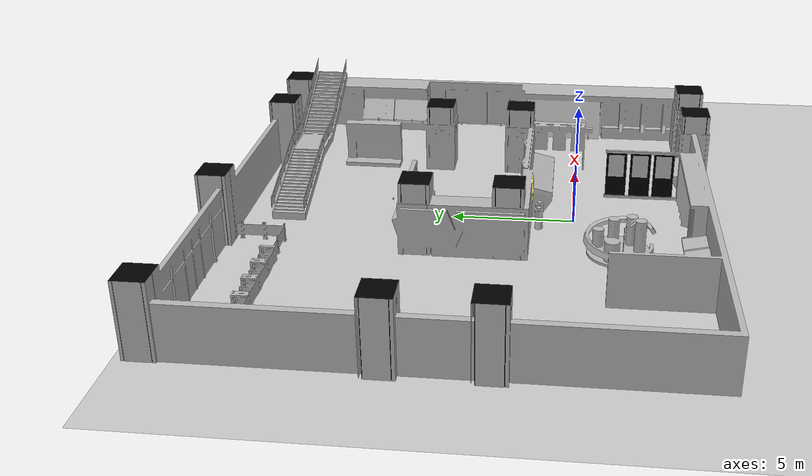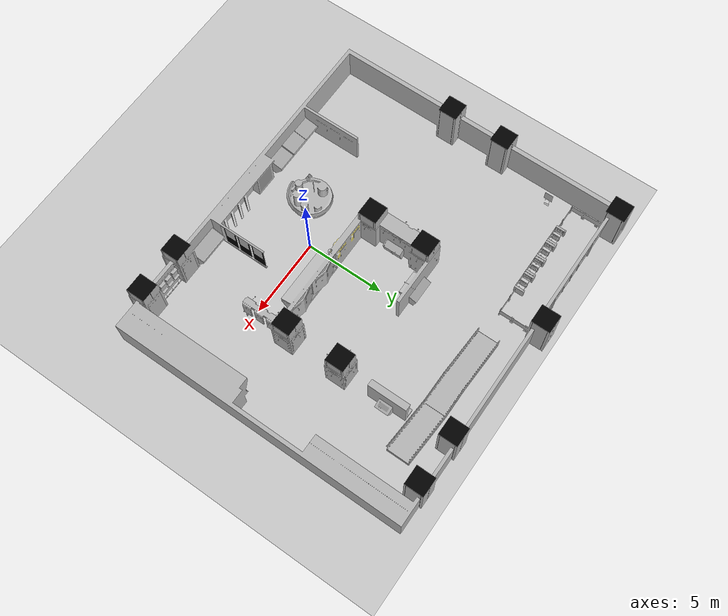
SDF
<?xml version="1.0" ?>
<sdf version="1.4">
  <world name="default">
    <include>
      <uri>model://ISCAS_groundplane</uri>
    </include>
    <include>
      <uri>model://sun</uri>
    </include>
    <include>
      <uri>model://ISCAS_Museum</uri>
      <name>world</name>
      <pose>0 4 0 0 0 0</pose>
    </include>
  </world>
</sdf>

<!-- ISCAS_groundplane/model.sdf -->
<sdf version="1.4">
  <model name="ISCAS_groundplane">
    <static>true</static>
    <link name="link">
      <collision name="collision">
        <geometry>
          <plane>
            <normal>0 0 1</normal>
            <size>30 30</size>
          </plane>
        </geometry>
        <surface>
          <friction>
            <ode>
              <mu>100000</mu>
              <mu2>10000</mu2>
            </ode>
          </friction>
        </surface>
      </collision>
      <visual name="visual">
        <cast_shadows>false</cast_shadows>
        <geometry>
          <plane>
            <normal>0 0 1</normal>
            <size>30 30</size>
          </plane>
        </geometry>
        <material>
          <script>
            <uri>model://ISCAS_groundplane/materials/scripts</uri>
            <uri>model://ISCAS_groundplane/materials/textures</uri>
            <name>ISCAS_groundplane/Image </name>
          </script>
        </material>
      </visual>
    </link>
  </model>
</sdf>

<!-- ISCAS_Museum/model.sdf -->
<sdf version="1.4">
  <model name="ISCAS_Museum">
    <link name="link">
      <inertial>
        <mass>15</mass>
        <inertia>
          <ixx>0.0</ixx>
          <ixy>0.0</ixy>
          <ixz>0.0</ixz>
          <iyy>0.0</iyy>
          <iyz>0.0</iyz>
          <izz>0.0</izz>
        </inertia>
      </inertial>
      <collision name="collision">
        <pose>0 0 0 0 0 0</pose>
        <geometry>
          <mesh>
            <uri>model://ISCAS_Museum/meshes/ISCAS_Museum.dae</uri>
          </mesh>
        </geometry>
      </collision>
      <visual name="visual">
        <pose>0 0 0 0 0 0</pose>
        <geometry>
          <mesh>
            <uri>model://ISCAS_Museum/meshes/ISCAS_Museum.dae</uri>
          </mesh>
        </geometry>
      </visual>
    </link>
    <static>1</static>
  </model>
</sdf>
